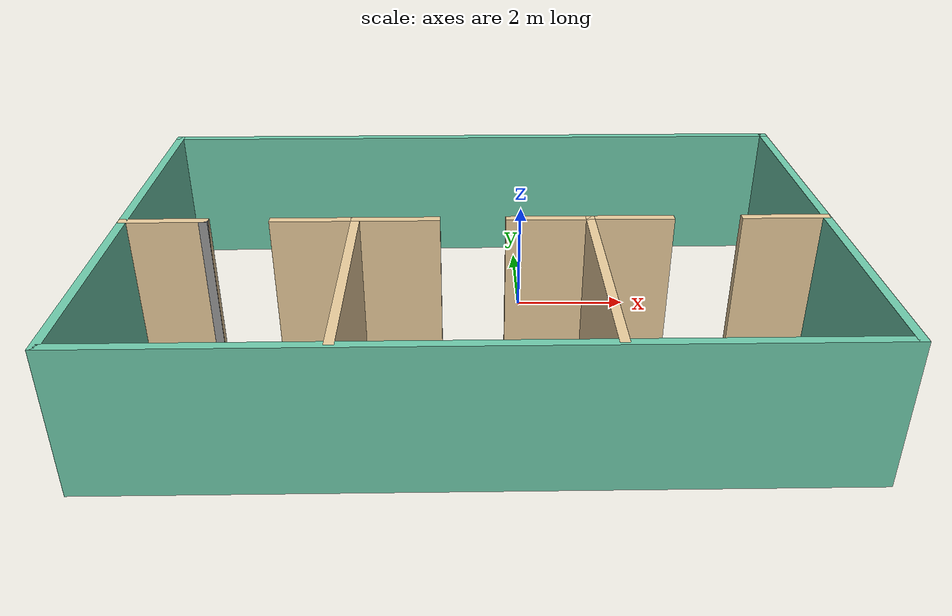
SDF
<?xml version='1.0'?>
<sdf version='1.6'>
  <model name='RobotBuilding'>
    <pose frame=''>-0.845783 -1.44196 0 0 -0 0</pose>
    <link name='Wall_17'>
      <collision name='Wall_17_Collision'>
        <geometry>
          <box>
            <size>12.0004 0.15 2.5</size>
          </box>
        </geometry>
        <pose frame=''>0 0 1.25 0 -0 0</pose>
      </collision>
      <visual name='Wall_17_Visual'>
        <pose frame=''>0 0 1.25 0 -0 0</pose>
        <geometry>
          <box>
            <size>12.0004 0.15 2.5</size>
          </box>
        </geometry>
        <material>
          <script>
            <uri>file://media/materials/scripts/gazebo.material</uri>
            <name>Gazebo/Grey</name>
          </script>
          <ambient>0.435294 0.796078 0.67451 1</ambient>
        </material>
        <meta>
          <layer>0</layer>
        </meta>
      </visual>
      <pose frame=''>-2e-06 3.925 0 0 0 -3.14159</pose>
    </link>
    <link name='Wall_19'>
      <collision name='Wall_19_Collision'>
        <geometry>
          <box>
            <size>8 0.15 2.5</size>
          </box>
        </geometry>
        <pose frame=''>0 0 1.25 0 -0 0</pose>
      </collision>
      <visual name='Wall_19_Visual'>
        <pose frame=''>0 0 1.25 0 -0 0</pose>
        <geometry>
          <box>
            <size>8 0.15 2.5</size>
          </box>
        </geometry>
        <material>
          <script>
            <uri>file://media/materials/scripts/gazebo.material</uri>
            <name>Gazebo/Grey</name>
          </script>
          <ambient>0.435294 0.796078 0.67451 1</ambient>
        </material>
        <meta>
          <layer>0</layer>
        </meta>
      </visual>
      <pose frame=''>-5.92522 -3.8e-05 0 0 0 -1.5708</pose>
    </link>
    <link name='Wall_20'>
      <collision name='Wall_20_Collision'>
        <geometry>
          <box>
            <size>12 0.15 2.5</size>
          </box>
        </geometry>
        <pose frame=''>0 0 1.25 0 -0 0</pose>
      </collision>
      <visual name='Wall_20_Visual'>
        <pose frame=''>0 0 1.25 0 -0 0</pose>
        <geometry>
          <box>
            <size>12 0.15 2.5</size>
          </box>
        </geometry>
        <material>
          <script>
            <uri>file://media/materials/scripts/gazebo.material</uri>
            <name>Gazebo/Grey</name>
          </script>
          <ambient>0.435294 0.796078 0.67451 1</ambient>
        </material>
        <meta>
          <layer>0</layer>
        </meta>
      </visual>
      <pose frame=''>-0.000217 -3.92504 0 0 -0 0</pose>
    </link>
    <link name='Wall_21'>
      <collision name='Wall_21_Collision'>
        <geometry>
          <box>
            <size>8 0.15 2.5</size>
          </box>
        </geometry>
        <pose frame=''>0 0 1.25 0 -0 0</pose>
      </collision>
      <visual name='Wall_21_Visual'>
        <pose frame=''>0 0 1.25 0 -0 0</pose>
        <geometry>
          <box>
            <size>8 0.15 2.5</size>
          </box>
        </geometry>
        <material>
          <script>
            <uri>file://media/materials/scripts/gazebo.material</uri>
            <name>Gazebo/Grey</name>
          </script>
          <ambient>0.435294 0.796078 0.67451 1</ambient>
        </material>
        <meta>
          <layer>0</layer>
        </meta>
      </visual>
      <pose frame=''>5.925 0 0 0 -0 1.57074</pose>
    </link>
    <link name='Wall_27'>
      <collision name='Wall_27_Collision'>
        <geometry>
          <box>
            <size>1.5 0.15 2.5</size>
          </box>
        </geometry>
        <pose frame=''>0 0 1.25 0 -0 0</pose>
      </collision>
      <visual name='Wall_27_Visual'>
        <pose frame=''>0 0 1.25 0 -0 0</pose>
        <geometry>
          <box>
            <size>1.5 0.15 2.5</size>
          </box>
        </geometry>
        <material>
          <script>
            <uri>file://media/materials/scripts/gazebo.material</uri>
            <name>Gazebo/Grey</name>
          </script>
          <ambient>0.921569 0.807843 0.615686 1</ambient>
        </material>
        <meta>
          <layer>0</layer>
        </meta>
      </visual>
      <pose frame=''>-5.24522 -0.018038 0 0 -0 0</pose>
    </link>
    <link name='Wall_29'>
      <collision name='Wall_29_Collision'>
        <geometry>
          <box>
            <size>1.51521 0.15 2.5</size>
          </box>
        </geometry>
        <pose frame=''>0 0 1.25 0 -0 0</pose>
      </collision>
      <visual name='Wall_29_Visual'>
        <pose frame=''>0 0 1.25 0 -0 0</pose>
        <geometry>
          <box>
            <size>1.51521 0.15 2.5</size>
          </box>
        </geometry>
        <material>
          <script>
            <uri>file://media/materials/scripts/gazebo.material</uri>
            <name>Gazebo/Grey</name>
          </script>
          <ambient>0.921569 0.807843 0.615686 1</ambient>
        </material>
        <meta>
          <layer>0</layer>
        </meta>
      </visual>
      <pose frame=''>-2.71606 -0.018038 0 0 -0 0</pose>
    </link>
    <link name='Wall_31'>
      <collision name='Wall_31_Collision'>
        <geometry>
          <box>
            <size>0.15 0.15 2.5</size>
          </box>
        </geometry>
        <pose frame=''>0 0 1.25 0 -0 0</pose>
      </collision>
      <visual name='Wall_31_Visual'>
        <pose frame=''>0 0 1.25 0 -0 0</pose>
        <geometry>
          <box>
            <size>0.15 0.15 2.5</size>
          </box>
        </geometry>
        <material>
          <script>
            <uri>file://media/materials/scripts/gazebo.material</uri>
            <name>Gazebo/Grey</name>
          </script>
          <ambient>1 1 1 1</ambient>
        </material>
        <meta>
          <layer>0</layer>
        </meta>
      </visual>
      <pose frame=''>-4.57022 -0.029538 0 0 -0 0</pose>
    </link>
    <link name='Wall_34'>
      <collision name='Wall_34_Collision'>
        <geometry>
          <box>
            <size>4 0.15 2.5</size>
          </box>
        </geometry>
        <pose frame=''>0 0 1.25 0 -0 0</pose>
      </collision>
      <visual name='Wall_34_Visual'>
        <pose frame=''>0 0 1.25 0 -0 0</pose>
        <geometry>
          <box>
            <size>4 0.15 2.5</size>
          </box>
        </geometry>
        <material>
          <script>
            <uri>file://media/materials/scripts/gazebo.material</uri>
            <name>Gazebo/Grey</name>
          </script>
          <ambient>0.921569 0.807843 0.615686 1</ambient>
        </material>
        <meta>
          <layer>0</layer>
        </meta>
      </visual>
      <pose frame=''>-2.03322 -1.94304 0 0 0 -1.5708</pose>
    </link>
    <link name='Wall_36'>
      <collision name='Wall_36_Collision'>
        <geometry>
          <box>
            <size>1.5 0.15 2.5</size>
          </box>
        </geometry>
        <pose frame=''>0 0 1.25 0 -0 0</pose>
      </collision>
      <visual name='Wall_36_Visual'>
        <pose frame=''>0 0 1.25 0 -0 0</pose>
        <geometry>
          <box>
            <size>1.5 0.15 2.5</size>
          </box>
        </geometry>
        <material>
          <script>
            <uri>file://media/materials/scripts/gazebo.material</uri>
            <name>Gazebo/Grey</name>
          </script>
          <ambient>0.921569 0.807843 0.615686 1</ambient>
        </material>
        <meta>
          <layer>0</layer>
        </meta>
      </visual>
      <pose frame=''>-1.35845 -0.018038 0 0 -0 0</pose>
    </link>
    <link name='Wall_43'>
      <collision name='Wall_43_Collision'>
        <geometry>
          <box>
            <size>1.5 0.15 2.5</size>
          </box>
        </geometry>
        <pose frame=''>0 0 1.25 0 -0 0</pose>
      </collision>
      <visual name='Wall_43_Visual'>
        <pose frame=''>0 0 1.25 0 -0 0</pose>
        <geometry>
          <box>
            <size>1.5 0.15 2.5</size>
          </box>
        </geometry>
        <material>
          <script>
            <uri>file://media/materials/scripts/gazebo.material</uri>
            <name>Gazebo/Grey</name>
          </script>
          <ambient>0.921569 0.807843 0.615686 1</ambient>
        </material>
        <meta>
          <layer>0</layer>
        </meta>
      </visual>
      <pose frame=''>5.23878 -0.018038 0 0 -0 0</pose>
    </link>
    <link name='Wall_45'>
      <collision name='Wall_45_Collision'>
        <geometry>
          <box>
            <size>4 0.15 2.5</size>
          </box>
        </geometry>
        <pose frame=''>0 0 1.25 0 -0 0</pose>
      </collision>
      <visual name='Wall_45_Visual'>
        <pose frame=''>0 0 1.25 0 -0 0</pose>
        <geometry>
          <box>
            <size>4 0.15 2.5</size>
          </box>
        </geometry>
        <material>
          <script>
            <uri>file://media/materials/scripts/gazebo.material</uri>
            <name>Gazebo/Grey</name>
          </script>
          <ambient>0.921569 0.807843 0.615686 1</ambient>
        </material>
        <meta>
          <layer>0</layer>
        </meta>
      </visual>
      <pose frame=''>1.92178 -1.94304 0 0 0 -1.5708</pose>
    </link>
    <link name='Wall_47'>
      <collision name='Wall_47_Collision'>
        <geometry>
          <box>
            <size>1.5 0.15 2.5</size>
          </box>
        </geometry>
        <pose frame=''>0 0 1.25 0 -0 0</pose>
      </collision>
      <visual name='Wall_47_Visual'>
        <pose frame=''>0 0 1.25 0 -0 0</pose>
        <geometry>
          <box>
            <size>1.5 0.15 2.5</size>
          </box>
        </geometry>
        <material>
          <script>
            <uri>file://media/materials/scripts/gazebo.material</uri>
            <name>Gazebo/Grey</name>
          </script>
          <ambient>0.921569 0.807843 0.615686 1</ambient>
        </material>
        <meta>
          <layer>0</layer>
        </meta>
      </visual>
      <pose frame=''>1.24678 -0.018038 0 0 -0 0</pose>
    </link>
    <link name='Wall_51'>
      <collision name='Wall_51_Collision'>
        <geometry>
          <box>
            <size>1.5 0.15 2.5</size>
          </box>
        </geometry>
        <pose frame=''>0 0 1.25 0 -0 0</pose>
      </collision>
      <visual name='Wall_51_Visual'>
        <pose frame=''>0 0 1.25 0 -0 0</pose>
        <geometry>
          <box>
            <size>1.5 0.15 2.5</size>
          </box>
        </geometry>
        <material>
          <script>
            <uri>file://media/materials/scripts/gazebo.material</uri>
            <name>Gazebo/Grey</name>
          </script>
          <ambient>0.921569 0.807843 0.615686 1</ambient>
        </material>
        <meta>
          <layer>0</layer>
        </meta>
      </visual>
      <pose frame=''>2.59678 -0.018038 0 0 -0 0</pose>
    </link>
    <static>1</static>
  </model>
</sdf>
